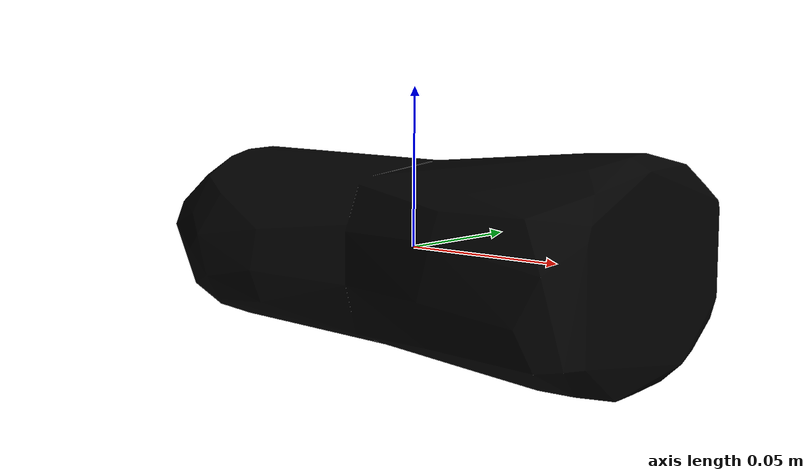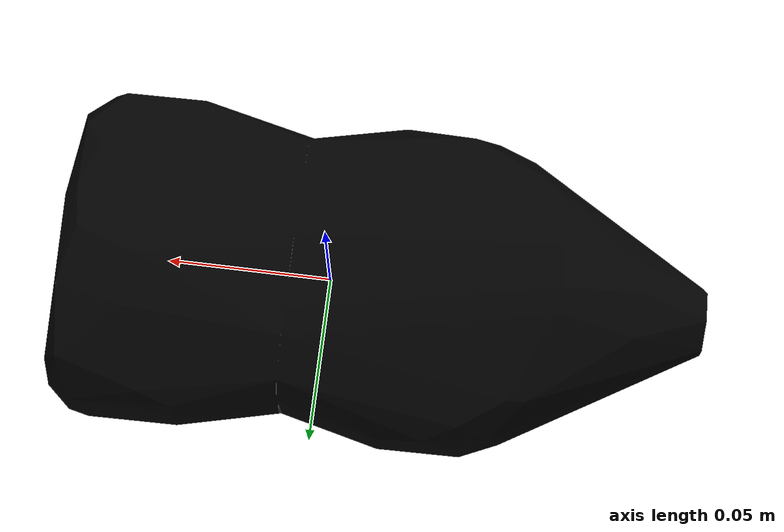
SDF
<?xml version="1.0"?>
<sdf version="1.4">
  <model name="006_mustard_bottle_textured">
    <pose>0 0 0  0 0 3.14</pose>
    <link name="body">
      <inertial>
        <mass> 1.0 </mass>
        <pose>0 0 0 0 0 0</pose>
        <inertia>
          <ixx>0.0007014092721457655</ixx>
          <ixy>0.0</ixy>
          <ixz>0.0</ixz>
          <iyy>0.0023772974006212805</iyy>
          <iyz>0.0</iyz>
          <izz>0.0027281266896929538</izz>
        </inertia>
      </inertial>
      <visual name="visual">
        <geometry>
          <mesh>
            <uri>model://006_mustard_bottle_textured/textured.dae</uri>
          </mesh>
        </geometry>
        <pose>-0.07484429837772107 -0.005002967007784245 -0.02766453523030315 -1.5633073492400062 0.3999830453240471 -1.56606276659488</pose>
      </visual>
      <collision name="collision">
        <geometry>
          <mesh>
            <uri>model://006_mustard_bottle_textured/textured.col.dae</uri>
          </mesh>
        </geometry>
        <max_contacts>10</max_contacts>
        <surface>
          <friction>
            <ode>
              <mu>0.8</mu>
              <mu2>0.8</mu2>
              <slip1>0</slip1>
              <slip2>0</slip2>
            </ode>
            <torsional>
              <ode/>
            </torsional>
          </friction>
          <contact>
            <ode>
              <kp>1000000.0</kp>
              <kd>1.0</kd>
              <max_vel>0.0</max_vel>
            </ode>
          </contact>
        </surface>
        <pose>-0.07484429837772107 -0.005002967007784245 -0.02766453523030315 -1.5633073492400062 0.3999830453240471 -1.56606276659488</pose>
      </collision>
    </link>
  </model>
</sdf>
